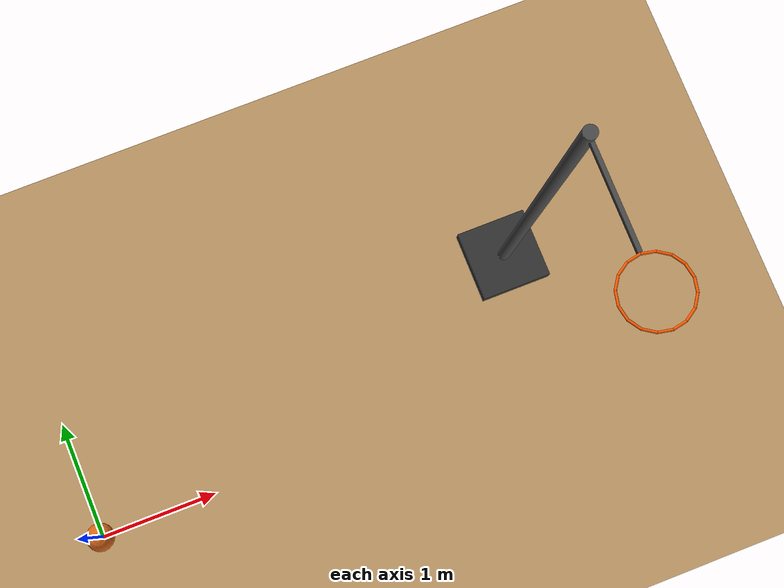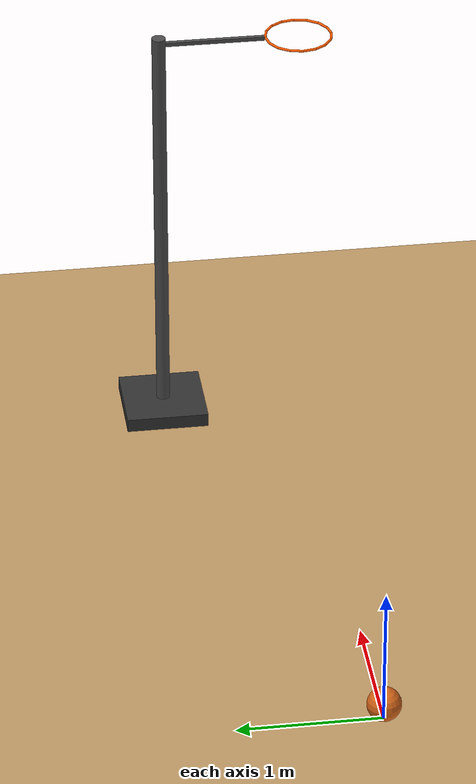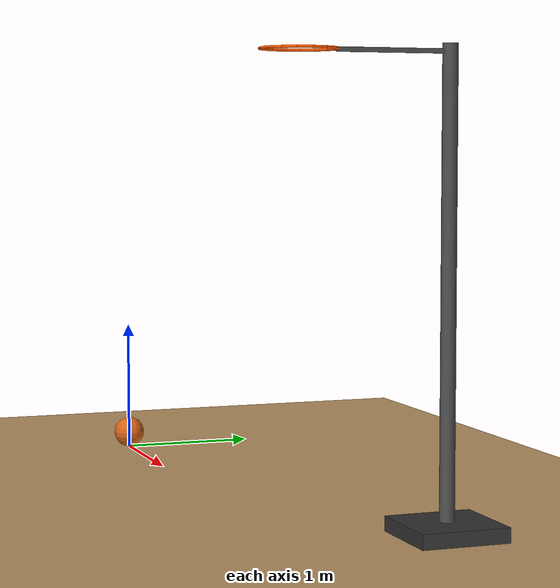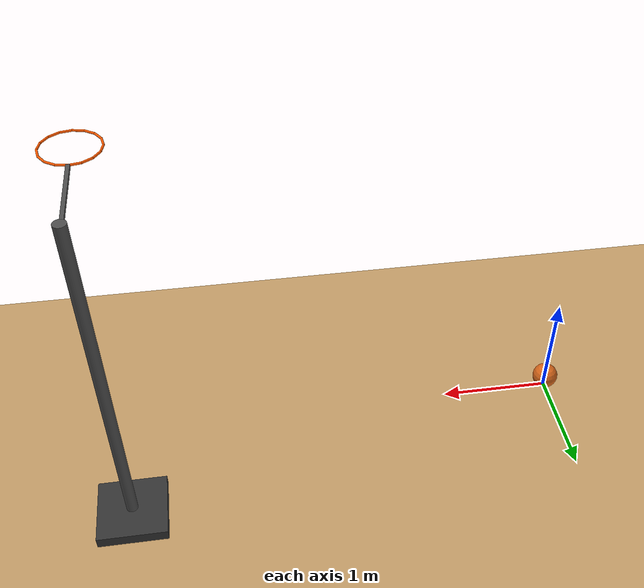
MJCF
<mujoco model="basketball_shot">
  <option timestep="0.002" gravity="0 0 -9.81"/>

  <visual>
    <global offwidth="1280" offheight="720"/>
  </visual>

  <worldbody>
    <light name="sun" pos="2 -3 8" dir="0 0.3 -1" directional="true"/>
    <geom name="floor" type="plane" pos="0 0 0" size="12 12 0.1" rgba="0.75 0.6 0.4 1"/>

    <body name="hoop" pos="4 0 3.05">
      <geom name="rim_00" type="capsule" fromto="0.237 0 0 0.2190 0.0907 0" size="0.009" rgba="1 0.35 0 1"/>
      <geom name="rim_01" type="capsule" fromto="0.2190 0.0907 0 0.1676 0.1676 0" size="0.009" rgba="1 0.35 0 1"/>
      <geom name="rim_02" type="capsule" fromto="0.1676 0.1676 0 0.0907 0.2190 0" size="0.009" rgba="1 0.35 0 1"/>
      <geom name="rim_03" type="capsule" fromto="0.0907 0.2190 0 0 0.237 0" size="0.009" rgba="1 0.35 0 1"/>
      <geom name="rim_04" type="capsule" fromto="0 0.237 0 -0.0907 0.2190 0" size="0.009" rgba="1 0.35 0 1"/>
      <geom name="rim_05" type="capsule" fromto="-0.0907 0.2190 0 -0.1676 0.1676 0" size="0.009" rgba="1 0.35 0 1"/>
      <geom name="rim_06" type="capsule" fromto="-0.1676 0.1676 0 -0.2190 0.0907 0" size="0.009" rgba="1 0.35 0 1"/>
      <geom name="rim_07" type="capsule" fromto="-0.2190 0.0907 0 -0.237 0 0" size="0.009" rgba="1 0.35 0 1"/>
      <geom name="rim_08" type="capsule" fromto="-0.237 0 0 -0.2190 -0.0907 0" size="0.009" rgba="1 0.35 0 1"/>
      <geom name="rim_09" type="capsule" fromto="-0.2190 -0.0907 0 -0.1676 -0.1676 0" size="0.009" rgba="1 0.35 0 1"/>
      <geom name="rim_10" type="capsule" fromto="-0.1676 -0.1676 0 -0.0907 -0.2190 0" size="0.009" rgba="1 0.35 0 1"/>
      <geom name="rim_11" type="capsule" fromto="-0.0907 -0.2190 0 0 -0.237 0" size="0.009" rgba="1 0.35 0 1"/>
      <geom name="rim_12" type="capsule" fromto="0 -0.237 0 0.0907 -0.2190 0" size="0.009" rgba="1 0.35 0 1"/>
      <geom name="rim_13" type="capsule" fromto="0.0907 -0.2190 0 0.1676 -0.1676 0" size="0.009" rgba="1 0.35 0 1"/>
      <geom name="rim_14" type="capsule" fromto="0.1676 -0.1676 0 0.2190 -0.0907 0" size="0.009" rgba="1 0.35 0 1"/>
      <geom name="rim_15" type="capsule" fromto="0.2190 -0.0907 0 0.237 0 0" size="0.009" rgba="1 0.35 0 1"/>
      <geom name="hoop_arm" type="box" pos="0 0.625 0" size="0.015 0.38 0.015" rgba="0.3 0.3 0.3 1"/>
      <geom name="hoop_pole" type="cylinder" fromto="0 1.0 -3.05 0 1.0 0.05" size="0.05" rgba="0.3 0.3 0.3 1"/>
      <geom name="hoop_base" type="box" pos="0 1.0 -3.0" size="0.3 0.3 0.05" rgba="0.2 0.2 0.2 1"/>
    </body>

    <body name="ball" pos="0 0 0.1195">
      <freejoint name="ball_free"/>
      <inertial pos="0 0 0" mass="0.62" diaginertia="0.005903 0.005903 0.005903"/>
      <geom name="ball" type="sphere" size="0.1195" condim="6" friction="0.8 0.02 0.05" rgba="0.85 0.4 0.1 1"/>
    </body>
  </worldbody>

  <keyframe>
    <key name="start" qpos="0 0 0.1195 1 0 0 0" qvel="3.008544 0 8.72556 0 0 0"/>
  </keyframe>
</mujoco>
